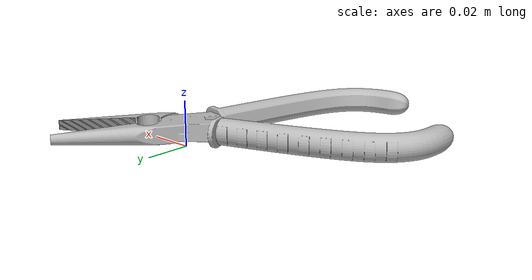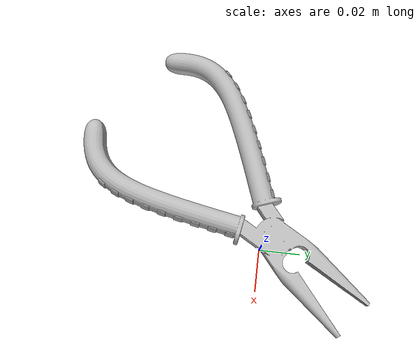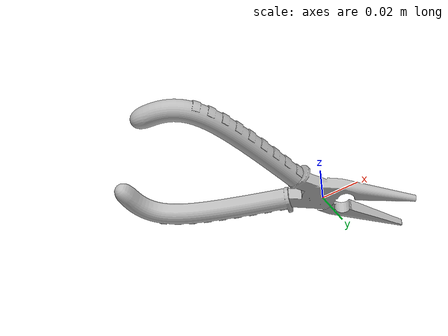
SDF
<?xml version="1.0" ?>
<sdf version="1.5">
  <model name="plier">
    <static>true</static>
    <link name="link">
      <collision name="collision">
        <geometry>
          <mesh>
            <uri>model://plier/meshes/plier.stl</uri>
            <scale>0.001 0.001 0.001</scale>
          </mesh>
        </geometry>
      </collision>
      <visual name="visual">
        <geometry>
          <mesh>
            <uri>model://plier/meshes/plier.stl</uri>
            <scale>0.001 0.001 0.001</scale>
          </mesh>
        </geometry>
      </visual>
    </link>
  </model>
</sdf>
